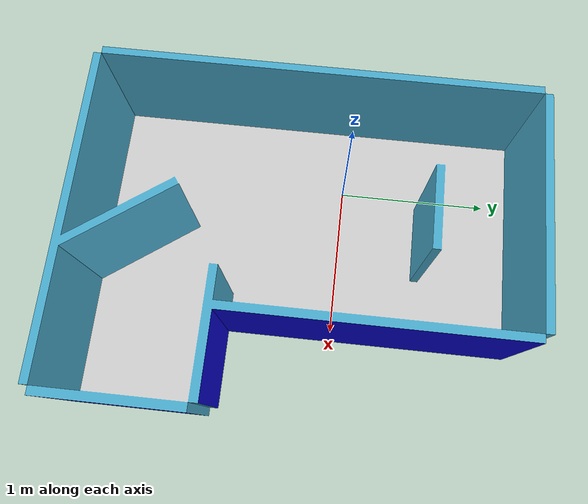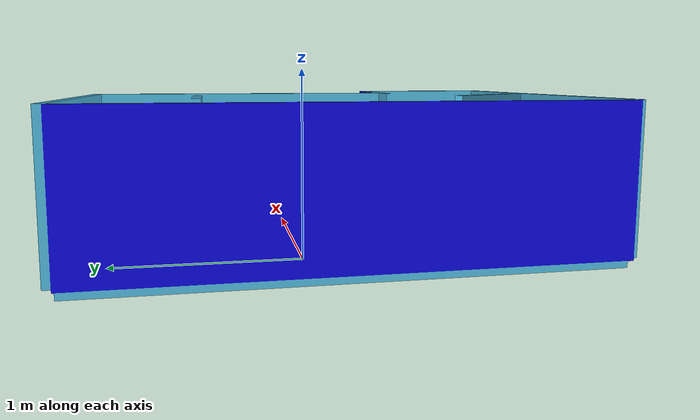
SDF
<?xml version="1.0" ?>
<sdf version="1.5">
  <model name="greenhouse">
   <static>true</static>
    <link name="link">
      <collision name="collision">
        <geometry>
          <mesh>
            <scale>1.0 1.0 1.0</scale>
            <uri>model://greenhouse/meshes/greenhouse.dae</uri>
          </mesh>
        </geometry>
      </collision>
      <inertial>
	<mass value="100"/>
      </inertial>
      <visual name="visual">
        <geometry>
          <mesh>
            <scale>1.0 1.0 1.0</scale>
            <uri>model://greenhouse/meshes/greenhouse.dae</uri>
          </mesh>
        </geometry>
      </visual>
    </link>
  </model>
</sdf>
